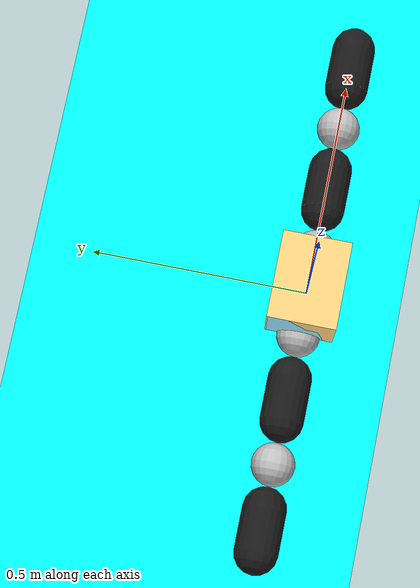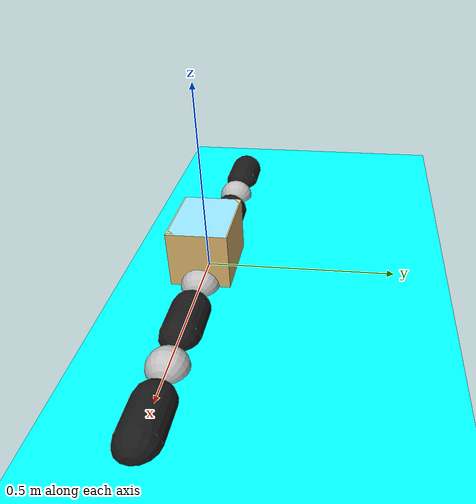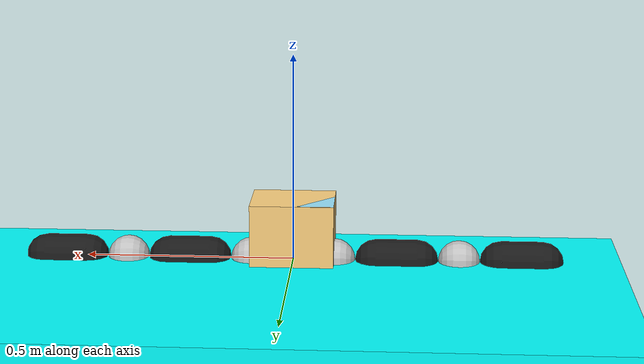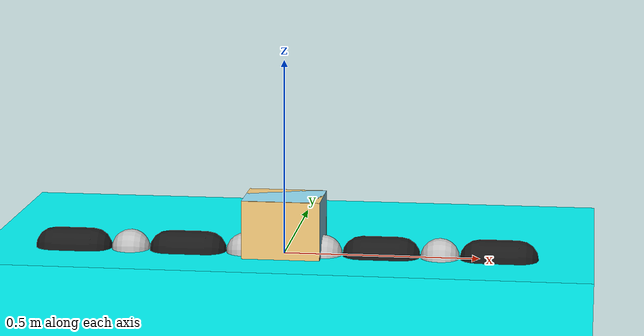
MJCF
<mujoco model="floating_hand_free_wrist">
<!-- Copyright (c) 2023 Boston Dynamics AI Institute LLC. All rights reserved. -->
  <compiler angle="radian" autolimits="true"/>

  <option gravity="0 0 -9.81" timestep="0.01" />

  <asset>
    <texture name="blue_grid" type="2d" builtin="checker" rgb1=".02 .14 .44" rgb2=".27 .55 1" width="300" height="300" mark="edge" markrgb="1 1 1"/>
    <material name="blue_grid" texture="blue_grid" texrepeat="1 1" texuniform="true" reflectance=".2"/>
    <material name="object" rgba=".6 0.9 1 1"/>
    <material name="grey" rgba="0.75 .75 .75 1"/>
    <material name="black" rgba="0.1 .1 .1 1"/>
  </asset>

  <default>
    <material specular="0.5" shininess="0.95"/>
    <default class="wrist">
      <joint damping="50" range="-2 2" type="slide"/>
      <position kp="35" ctrlrange="-2 2" forcerange="-1000 1000"/>
    </default>
    <default class="wrist_theta">
      <joint damping="50" range="-3 3" type="hinge"/>
      <position kp="150" ctrlrange="-3 3" forcerange="-1000 1000"/>
    </default>
    <default class="finger">
      <joint axis="0 -1 0" damping="2" />
      <position kp="35" forcerange="-1000 1000"/>
      <default class="left_shoulder">
        <joint range="-1.57 0"/>
        <position ctrlrange="-1.57 0"/>
      </default>
      <default class="right_shoulder">
        <joint range="0 1.57"/>
        <position ctrlrange="0 1.57"/>
      </default>
      <default class="left_elbow">
        <joint range="-2.4 0"/>
        <position ctrlrange="-2.4 0"/>
      </default>
      <default class="right_elbow">
        <joint range="0 2.4"/>
        <position ctrlrange="0 2.4"/>
      </default>
    </default>
    <default class="collision">
      <geom priority="4" friction="0.50" solimp="0.01" solref="0.01" group="0"/>
    </default>
  </default>

  <worldbody>
    <body>
      <geom mass="0" name="floor" pos="0 0 -0.10" condim="3" size="10.0 10.0 0.10" rgba="0 1 1 1" type="box" material="blue_grid"/>
    </body>

    <body name="box" pos="0.0 0.0 0.00">
      <geom mass="0.4" size="0.10 0.075 0.15" type="box" material="object"/>
      <geom mass="0" size="0.10 0.078 0.075" pos="0 0 0.075" type="box" rgba="1 0.83 0.5 1" contype="0" conaffinity="0"/>
      <site pos="0 0 0" name="site_box"/>
      <joint axis="1 0 0" name="slide_object_x" type="slide" limited="true" range="-5 5"/>
      <joint axis="0 0 1" name="slide_object_z" type="slide" limited="true" range="-5 5"/>
      <joint axis="0 -1 0" name="joint_object_y" type="hinge"/>
    </body>

    <body name="robot_base" pos="0 0 0">
      <geom mass="1.0" pos="0.1 0 0" quat="0.5 0 0.5 0" size="0.05" class="collision" type="sphere" material="grey"/>
      <geom mass="1.0" pos="-0.1 0 0" quat="0.5 0 0.5 0" size="0.05" class="collision" type="sphere" material="grey"/>
      <joint axis="-1 0 0" name="slide_x" class="wrist"/>
      <joint axis="0 0 1" name="slide_z" class="wrist"/>
      <joint axis="0 1 0" name="hinge_theta" class="wrist_theta"/>
      <body name="robot_left_shoulder" pos="0.10 0 0" gravcomp="1.0">
        <geom mass="0.5" pos="0.15 0 0" quat="0.5 0 0.5 0" size="0.05 0.05" type="capsule" material="black"/>
        <site pos="0.15 0 0" name="site_left_shoulder"/>
        <geom mass="0.5" pos="0.30 0 0" quat="0.5 0 0.5 0" size="0.05" type="sphere" material="grey"/>
        <joint name="joint_left_shoulder" class="left_shoulder"/>
        <body name="robot_left_elbow" pos="0.30 0 0" gravcomp="1.0">
          <geom mass="0.5" pos="0.15 0 0" quat="0.5 0 0.5 0" size="0.05 0.05" type="capsule" material="black"/>
          <site pos="0.15 0 0" name="site_left_elbow"/>
          <joint name="joint_left_elbow" class="left_elbow"/>
        </body>
      </body>
      <body name="robot_right_shoulder" pos="-0.10 0 0" gravcomp="1.0">
        <geom mass="0.5" pos="-0.15 0 0" quat="0.5 0 0.5 0" size="0.05 0.05" type="capsule" material="black"/>
        <site pos="-0.15 0 0" name="site_right_shoulder"/>
        <geom mass="0.5" pos="-0.30 0 0" quat="0.5 0 0.5 0" size="0.05" type="sphere" material="grey"/>
        <joint name="joint_right_shoulder" class="right_shoulder"/>
        <body name="robot_right_elbow" pos="-0.30 0 0" gravcomp="1.0">
          <geom mass="0.5" pos="-0.15 0 0" quat="0.5 0 0.5 0" size="0.05 0.05" type="capsule" material="black"/>
          <site pos="-0.15 0 0" name="site_right_elbow"/>
          <joint name="joint_right_elbow" class="right_elbow"/>
        </body>
      </body>
    </body>
  </worldbody>

  <keyframe>
    <!-- [object_xytheta arm_joint_angles] -->
    <key name="home" qpos="0 0 0 0  0 0 0 0 0 0" />
  </keyframe>

  <contact>
    <exclude body1="robot_base" body2="body_left_shoulder"/>
    <exclude body1="robot_base" body2="body_right_shoulder"/>
  </contact>

  <sensor>
    <framepos name="sensor_left_shoulder" objtype="site" objname="site_left_shoulder" reftype="site" refname="site_box"/>
    <framepos name="sensor_left_elbow" objtype="site" objname="site_left_elbow" reftype="site" refname="site_box"/>
    <framepos name="sensor_right_shoulder" objtype="site" objname="site_right_shoulder" reftype="site" refname="site_box"/>
    <framepos name="sensor_right_elbow" objtype="site" objname="site_right_elbow" reftype="site" refname="site_box"/>
  </sensor>

  <actuator>
    <position name="actuator_base_x" joint="slide_x" class="wrist"/>
    <position name="actuator_base_z" joint="slide_z" class="wrist"/>
    <position name="actuator_base_theta" joint="hinge_theta" class="wrist_theta"/>
    <position name="actuator_left_shoulder" joint="joint_left_shoulder" class="left_shoulder"/>
    <position name="actuator_left_elbow" joint="joint_left_elbow" class="left_elbow"/>
    <position name="actuator_right_shoulder" joint="joint_right_shoulder" class="right_shoulder"/>
    <position name="actuator_right_elbow" joint="joint_right_elbow" class="right_elbow"/>
  </actuator>
</mujoco>
